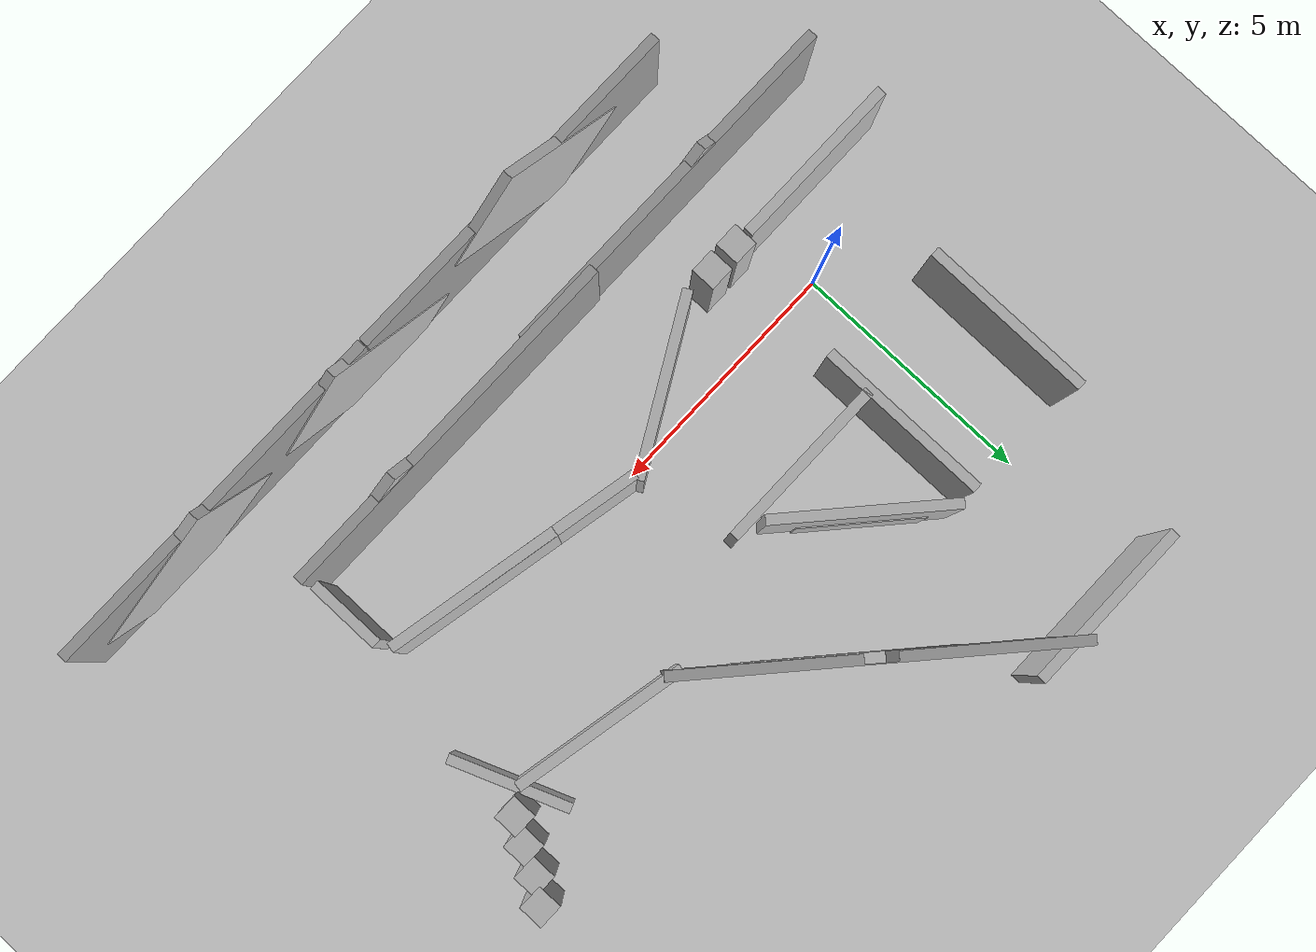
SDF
<sdf version="1.6">
 <world name="default">
  <model name="ground_plane">
   <static>1</static>
   <link name="link">
    <collision name="collision">
     <geometry><plane><normal>0 0 1</normal><size>100 100</size></plane></geometry>
     <surface><friction><ode><mu>100</mu><mu2>50</mu2></ode></friction></surface>
    </collision>
    <visual name="visual">
     <cast_shadows>0</cast_shadows>
     <geometry><plane><normal>0 0 1</normal><size>100 100</size></plane></geometry>
     <material>
      <script><uri>file://media/materials/scripts/gazebo.material</uri><name>Gazebo/Grey</name></script>
     </material>
    </visual>
   </link>
  </model>
  <model name="mywall_net3_clone">
   <static>1</static>
   <link name="link">
    <pose>0 0 1.4 0 -0 0</pose>
    <collision name="collision"><geometry><box><size>3.5 0.2 2.4</size></box></geometry></collision>
    <visual name="visual">
     <cast_shadows>0</cast_shadows>
     <geometry><box><size>3.5 0.2 2.4</size></box></geometry>
     <material>
      <script>
       <uri>model://mywall_net3/materials/scripts</uri>
       <uri>model://mywall_net3/materials/textures</uri>
       <name>vrc/mywall_net3</name>
      </script>
     </material>
    </visual>
   </link>
   <pose>-1.37353 3.08384 0 0 -0 1.57</pose>
  </model>
  <model name="mywall_net3_clone_0">
   <static>1</static>
   <link name="link">
    <pose>0 0 1.4 0 -0 0</pose>
    <collision name="collision"><geometry><box><size>3.5 0.2 2.4</size></box></geometry></collision>
    <visual name="visual">
     <cast_shadows>0</cast_shadows>
     <geometry><box><size>3.5 0.2 2.4</size></box></geometry>
     <material>
      <script>
       <uri>model://mywall_net3/materials/scripts</uri>
       <uri>model://mywall_net3/materials/textures</uri>
       <name>vrc/mywall_net3</name>
      </script>
     </material>
    </visual>
   </link>
   <pose>1.22002 2.95583 0 0 -0 1.57</pose>
  </model>
  <model name="mywall_net9">
   <static>1</static>
   <link name="link">
    <pose>0 0 1.4 0 -0 0</pose>
    <collision name="collision"><geometry><box><size>3.5 0.2 2.4</size></box></geometry></collision>
    <visual name="visual">
     <cast_shadows>0</cast_shadows>
     <geometry><box><size>3.5 0.2 2.4</size></box></geometry>
     <material>
      <script>
       <uri>model://mywall_net9/materials/scripts</uri>
       <uri>model://mywall_net9/materials/textures</uri>
       <name>vrc/mywall_net9</name>
      </script>
     </material>
    </visual>
   </link>
   <pose>3 2.1723 0 0 -0 0</pose>
  </model>
  <model name="mywall_net8">
   <static>1</static>
   <link name="link">
    <pose>0 0 1.4 0 -0 0</pose>
    <collision name="collision"><geometry><box><size>3.5 0.2 2.4</size></box></geometry></collision>
    <visual name="visual">
     <cast_shadows>0</cast_shadows>
     <geometry><box><size>3.5 0.2 2.4</size></box></geometry>
     <material>
      <script>
       <uri>model://mywall_net8/materials/scripts</uri>
       <uri>model://mywall_net8/materials/textures</uri>
       <name>vrc/mywall_net8</name>
      </script>
     </material>
    </visual>
   </link>
   <pose>-1.13585 -1.30699 0 0 -0 0</pose>
  </model>
  <model name="mywall1_0">
   <static>1</static>
   <link name="link">
    <pose>0 0 1.4 0 -0 0</pose>
    <collision name="collision"><geometry><box><size>3.5 0.2 2.4</size></box></geometry></collision>
    <visual name="visual">
     <cast_shadows>0</cast_shadows>
     <geometry><box><size>3.5 0.2 2.4</size></box></geometry>
     <material>
      <script>
       <uri>model://mywall1/materials/scripts</uri>
       <uri>model://mywall1/materials/textures</uri>
       <name>vrc/mywall1</name>
      </script>
     </material>
    </visual>
   </link>
   <pose>1.18748 7.74669 0 0 -0 0</pose>
  </model>
  <model name="grey_wall_clone_clone_clone_clone">
   <static>1</static>
   <link name="link">
    <pose>0 0 1.4 0 -0 0</pose>
    <collision name="collision"><geometry><box><size>7.5 0.2 2.8</size></box></geometry></collision>
    <visual name="visual">
     <cast_shadows>0</cast_shadows>
     <geometry><box><size>7.5 0.2 2.8</size></box></geometry>
     <material>
      <script>
       <uri>model://grey_wall/materials/scripts</uri>
       <uri>model://grey_wall/materials/textures</uri>
       <name>vrc/grey_wall</name>
      </script>
     </material>
    </visual>
   </link>
   <pose>4.57876 5.44143 0 0 0 -0.735</pose>
  </model>
  <model name="mywall_net8_clone_clone_0">
   <static>1</static>
   <link name="link">
    <pose>0 0 1.4 0 -0 0</pose>
    <collision name="collision"><geometry><box><size>3.5 0.2 2.4</size></box></geometry></collision>
    <visual name="visual">
     <cast_shadows>0</cast_shadows>
     <geometry><box><size>3.5 0.2 2.4</size></box></geometry>
     <material>
      <script>
       <uri>model://mywall_net8/materials/scripts</uri>
       <uri>model://mywall_net8/materials/textures</uri>
       <name>vrc/mywall_net8</name>
      </script>
     </material>
    </visual>
   </link>
   <pose>3.62528 -0.556702 0 0 -0 0.5</pose>
  </model>
  <model name="mypillar_1_clone">
   <static>1</static>
   <link name="link">
    <pose>0 0 1.4 0 -0 0</pose>
    <collision name="collision"><geometry><box><size>0.5 0.5 2.4</size></box></geometry></collision>
    <visual name="visual">
     <cast_shadows>0</cast_shadows>
     <geometry><box><size>0.5 0.5 2.4</size></box></geometry>
     <material>
      <script>
       <uri>model://mypillar/materials/scripts</uri>
       <uri>model://mypillar/materials/textures</uri>
       <name>vrc/mypillar</name>
      </script>
     </material>
    </visual>
   </link>
   <pose>0.920022 -1.31799 0 0 -0 0</pose>
  </model>
  <model name="mypillar_1_clone_0">
   <static>1</static>
   <link name="link">
    <pose>0 0 1.4 0 -0 0</pose>
    <collision name="collision"><geometry><box><size>0.5 0.5 2.4</size></box></geometry></collision>
    <visual name="visual">
     <cast_shadows>0</cast_shadows>
     <geometry><box><size>0.5 0.5 2.4</size></box></geometry>
     <material>
      <script>
       <uri>model://mypillar/materials/scripts</uri>
       <uri>model://mypillar/materials/textures</uri>
       <name>vrc/mypillar</name>
      </script>
     </material>
    </visual>
   </link>
   <pose>1.54699 -1.31215 0 0 -0 0</pose>
  </model>
  <model name="mywall0_clone">
   <static>1</static>
   <link name="link">
    <pose>0 0 1.4 0 -0 0</pose>
    <collision name="collision"><geometry><box><size>3.5 0.2 2.4</size></box></geometry></collision>
    <visual name="visual">
     <cast_shadows>0</cast_shadows>
     <geometry><box><size>3.5 0.2 2.4</size></box></geometry>
     <material>
      <script>
       <uri>model://mywall0/materials/scripts</uri>
       <uri>model://mywall0/materials/textures</uri>
       <name>vrc/mywall0</name>
      </script>
     </material>
    </visual>
   </link>
   <pose>6.82844 -0.184627 0 0 0 -0.2</pose>
  </model>
  <model name="mywall0_clone_clone">
   <static>1</static>
   <link name="link">
    <pose>0 0 1.4 0 -0 0</pose>
    <collision name="collision"><geometry><box><size>3.5 0.2 2.4</size></box></geometry></collision>
    <visual name="visual">
     <cast_shadows>0</cast_shadows>
     <geometry><box><size>3.5 0.2 2.4</size></box></geometry>
     <material>
      <script>
       <uri>model://mywall0/materials/scripts</uri>
       <uri>model://mywall0/materials/textures</uri>
       <name>vrc/mywall0</name>
      </script>
     </material>
    </visual>
   </link>
   <pose>8.52847 -0.528615 0 0 0 -0.2</pose>
  </model>
  <model name="mywall_net2_1_clone">
   <static>1</static>
   <link name="link">
    <pose>0 0 1.4 0 -0 0</pose>
    <collision name="collision"><geometry><box><size>3.5 0.2 2.4</size></box></geometry></collision>
    <visual name="visual">
     <cast_shadows>0</cast_shadows>
     <geometry><box><size>3.5 0.2 2.4</size></box></geometry>
     <material>
      <script>
       <uri>model://mywall_net2/materials/scripts</uri>
       <uri>model://mywall_net2/materials/textures</uri>
       <name>vrc/mywall_net2</name>
      </script>
     </material>
    </visual>
   </link>
   <pose>8.7594 2.72284 0 0 0 -0.2</pose>
  </model>
  <model name="mypillar_1_clone_0_clone">
   <static>1</static>
   <link name="link">
    <pose>0 0 1.4 0 -0 0</pose>
    <collision name="collision"><geometry><box><size>0.5 0.5 2.4</size></box></geometry></collision>
    <visual name="visual">
     <cast_shadows>0</cast_shadows>
     <geometry><box><size>0.5 0.5 2.4</size></box></geometry>
     <material>
      <script>
       <uri>model://mypillar/materials/scripts</uri>
       <uri>model://mypillar/materials/textures</uri>
       <name>vrc/mypillar</name>
      </script>
     </material>
    </visual>
   </link>
   <pose>10.8687 2.68887 0 0 -0 0</pose>
  </model>
  <model name="mypillar_1_clone_0_clone_0">
   <static>1</static>
   <link name="link">
    <pose>0 0 1.4 0 -0 0</pose>
    <collision name="collision"><geometry><box><size>0.5 0.5 2.4</size></box></geometry></collision>
    <visual name="visual">
     <cast_shadows>0</cast_shadows>
     <geometry><box><size>0.5 0.5 2.4</size></box></geometry>
     <material>
      <script>
       <uri>model://mypillar/materials/scripts</uri>
       <uri>model://mypillar/materials/textures</uri>
       <name>vrc/mypillar</name>
      </script>
     </material>
    </visual>
   </link>
   <pose>11.1303 3.14665 0 0 -0 0</pose>
  </model>
  <model name="mypillar_1_clone_0_clone_1">
   <static>1</static>
   <link name="link">
    <pose>0 0 1.4 0 -0 0</pose>
    <collision name="collision"><geometry><box><size>0.5 0.5 2.4</size></box></geometry></collision>
    <visual name="visual">
     <cast_shadows>0</cast_shadows>
     <geometry><box><size>0.5 0.5 2.4</size></box></geometry>
     <material>
      <script>
       <uri>model://mypillar/materials/scripts</uri>
       <uri>model://mypillar/materials/textures</uri>
       <name>vrc/mypillar</name>
      </script>
     </material>
    </visual>
   </link>
   <pose>11.3906 3.64228 0 0 -0 0</pose>
  </model>
  <model name="mypillar_1_clone_0_clone_2">
   <static>1</static>
   <link name="link">
    <pose>0 0 1.4 0 -0 0</pose>
    <collision name="collision"><geometry><box><size>0.5 0.5 2.4</size></box></geometry></collision>
    <visual name="visual">
     <cast_shadows>0</cast_shadows>
     <geometry><box><size>0.5 0.5 2.4</size></box></geometry>
     <material>
      <script>
       <uri>model://mypillar/materials/scripts</uri>
       <uri>model://mypillar/materials/textures</uri>
       <name>vrc/mypillar</name>
      </script>
     </material>
    </visual>
   </link>
   <pose>11.6902 4.0623 0 0 -0 0</pose>
  </model>
  <model name="mywall_net11_0_clone_clone">
   <static>1</static>
   <link name="link">
    <pose>0 0 1.4 0 -0 0</pose>
    <collision name="collision"><geometry><box><size>1.5 0.2 2.4</size></box></geometry></collision>
    <visual name="visual">
     <cast_shadows>0</cast_shadows>
     <geometry><box><size>1.5 0.2 2.4</size></box></geometry>
     <material>
      <script>
       <uri>model://mywall_net11/materials/scripts</uri>
       <uri>model://mywall_net11/materials/textures</uri>
       <name>vrc/mywall_net11</name>
      </script>
     </material>
    </visual>
   </link>
   <pose>10.3494 -1.85373 2.8 3.14 0 1.57</pose>
  </model>
  <model name="grey_wall_2_clone">
   <static>1</static>
   <link name="link">
    <pose>0 0 1.4 0 -0 0</pose>
    <collision name="collision"><geometry><box><size>7.5 0.2 2.8</size></box></geometry></collision>
    <visual name="visual">
     <cast_shadows>0</cast_shadows>
     <geometry><box><size>7.5 0.2 2.8</size></box></geometry>
     <material>
      <script>
       <uri>model://grey_wall/materials/scripts</uri>
       <uri>model://grey_wall/materials/textures</uri>
       <name>vrc/grey_wall</name>
      </script>
     </material>
    </visual>
   </link>
   <pose>6.72766 -2.82714 0 0 -0 0</pose>
  </model>
  <model name="grey_wall_2_clone_0">
   <static>1</static>
   <link name="link">
    <pose>0 0 1.4 0 -0 0</pose>
    <collision name="collision"><geometry><box><size>7.5 0.2 2.8</size></box></geometry></collision>
    <visual name="visual">
     <cast_shadows>0</cast_shadows>
     <geometry><box><size>7.5 0.2 2.8</size></box></geometry>
     <material>
      <script>
       <uri>model://grey_wall/materials/scripts</uri>
       <uri>model://grey_wall/materials/textures</uri>
       <name>vrc/grey_wall</name>
      </script>
     </material>
    </visual>
   </link>
   <pose>0.993119 -2.88058 0 0 -0 0</pose>
  </model>
  <model name="grey_wall_2_clone_1">
   <static>1</static>
   <link name="link">
    <pose>0 0 1.4 0 -0 0</pose>
    <collision name="collision"><geometry><box><size>7.5 0.2 2.8</size></box></geometry></collision>
    <visual name="visual">
     <cast_shadows>0</cast_shadows>
     <geometry><box><size>7.5 0.2 2.8</size></box></geometry>
     <material>
      <script>
       <uri>model://grey_wall/materials/scripts</uri>
       <uri>model://grey_wall/materials/textures</uri>
       <name>vrc/grey_wall</name>
      </script>
     </material>
    </visual>
   </link>
   <pose>10.4704 -4.87772 0 0 -0 0</pose>
  </model>
  <model name="grey_wall_2_clone_2">
   <static>1</static>
   <link name="link">
    <pose>0 0 1.4 0 -0 0</pose>
    <collision name="collision"><geometry><box><size>7.5 0.2 2.8</size></box></geometry></collision>
    <visual name="visual">
     <cast_shadows>0</cast_shadows>
     <geometry><box><size>7.5 0.2 2.8</size></box></geometry>
     <material>
      <script>
       <uri>model://grey_wall/materials/scripts</uri>
       <uri>model://grey_wall/materials/textures</uri>
       <name>vrc/grey_wall</name>
      </script>
     </material>
    </visual>
   </link>
   <pose>2.94832 -4.87324 0 0 -0 0</pose>
  </model>
  <model name="mywall_net11">
   <static>1</static>
   <link name="link">
    <pose>0 0 1.4 0 -0 0</pose>
    <collision name="collision"><geometry><box><size>1.5 0.2 2.4</size></box></geometry></collision>
    <visual name="visual">
     <cast_shadows>0</cast_shadows>
     <geometry><box><size>1.5 0.2 2.4</size></box></geometry>
     <material>
      <script>
       <uri>model://mywall_net11/materials/scripts</uri>
       <uri>model://mywall_net11/materials/textures</uri>
       <name>vrc/mywall_net11</name>
      </script>
     </material>
    </visual>
   </link>
   <pose>4.268 -2.8534 0.8 0 1.57 0</pose>
  </model>
  <model name="mywall_net2">
   <static>1</static>
   <link name="link">
    <pose>0 0 1.4 0 -0 0</pose>
    <collision name="collision"><geometry><box><size>3.5 0.2 2.4</size></box></geometry></collision>
    <visual name="visual">
     <cast_shadows>0</cast_shadows>
     <geometry><box><size>3.5 0.2 2.4</size></box></geometry>
     <material>
      <script>
       <uri>model://mywall_net2/materials/scripts</uri>
       <uri>model://mywall_net2/materials/textures</uri>
       <name>vrc/mywall_net2</name>
      </script>
     </material>
    </visual>
   </link>
   <pose>-0.288156 -2.9 -3e-06 0 0.734999 0</pose>
  </model>
  <model name="mywall_net5_clone_0">
   <static>1</static>
   <link name="link">
    <pose>0 0 1.4 0 -0 0</pose>
    <collision name="collision"><geometry><box><size>3.5 0.2 2.4</size></box></geometry></collision>
    <visual name="visual">
     <cast_shadows>0</cast_shadows>
     <geometry><box><size>3.5 0.2 2.4</size></box></geometry>
     <material>
      <script>
       <uri>model://mywall_net5/materials/scripts</uri>
       <uri>model://mywall_net5/materials/textures</uri>
       <name>vrc/mywall_net5</name>
      </script>
     </material>
    </visual>
   </link>
   <pose>3.3952 -4.85 0.799997 0 -0.734999 0</pose>
  </model>
  <model name="mywall_net11_clone">
   <static>1</static>
   <link name="link">
    <pose>0 0 1.4 0 -0 0</pose>
    <collision name="collision"><geometry><box><size>1.5 0.2 2.4</size></box></geometry></collision>
    <visual name="visual">
     <cast_shadows>0</cast_shadows>
     <geometry><box><size>1.5 0.2 2.4</size></box></geometry>
     <material>
      <script>
       <uri>model://mywall_net11/materials/scripts</uri>
       <uri>model://mywall_net11/materials/textures</uri>
       <name>vrc/mywall_net11</name>
      </script>
     </material>
    </visual>
   </link>
   <pose>6.86741 -2.84387 0.799997 0 0.735 0</pose>
  </model>
  <model name="mywall_net8_clone_0">
   <static>1</static>
   <link name="link">
    <pose>0 0 1.4 0 -0 0</pose>
    <collision name="collision"><geometry><box><size>3.5 0.2 2.4</size></box></geometry></collision>
    <visual name="visual">
     <cast_shadows>0</cast_shadows>
     <geometry><box><size>3.5 0.2 2.4</size></box></geometry>
     <material>
      <script>
       <uri>model://mywall_net8/materials/scripts</uri>
       <uri>model://mywall_net8/materials/textures</uri>
       <name>vrc/mywall_net8</name>
      </script>
     </material>
    </visual>
   </link>
   <pose>7.92725 -4.85 -3e-06 0 -0.734999 0</pose>
  </model>
  <model name="mywall_net3">
   <static>1</static>
   <link name="link">
    <pose>0 0 1.4 0 -0 0</pose>
    <collision name="collision"><geometry><box><size>3.5 0.2 2.4</size></box></geometry></collision>
    <visual name="visual">
     <cast_shadows>0</cast_shadows>
     <geometry><box><size>3.5 0.2 2.4</size></box></geometry>
     <material>
      <script>
       <uri>model://mywall_net3/materials/scripts</uri>
       <uri>model://mywall_net3/materials/textures</uri>
       <name>vrc/mywall_net3</name>
      </script>
     </material>
    </visual>
   </link>
   <pose>10.8524 -4.85873 0 0 0.6 0</pose>
  </model>
  <model name="mywall_net4">
   <static>1</static>
   <link name="link">
    <pose>0 0 1.4 0 -0 0</pose>
    <collision name="collision"><geometry><box><size>3.5 0.2 2.4</size></box></geometry></collision>
    <visual name="visual">
     <cast_shadows>0</cast_shadows>
     <geometry><box><size>3.5 0.2 2.4</size></box></geometry>
     <material>
      <script>
       <uri>model://mywall_net4/materials/scripts</uri>
       <uri>model://mywall_net4/materials/textures</uri>
       <name>vrc/mywall_net4</name>
      </script>
     </material>
    </visual>
   </link>
   <pose>4.2 5.75888 -3e-06 -0 0.735001 -0.735001</pose>
  </model>
  <model name="mywall_net11_0_clone_clone_clone_clone">
   <static>1</static>
   <link name="link">
    <pose>0 0 1.4 0 -0 0</pose>
    <collision name="collision"><geometry><box><size>1.5 0.2 2.4</size></box></geometry></collision>
    <visual name="visual">
     <cast_shadows>0</cast_shadows>
     <geometry><box><size>1.5 0.2 2.4</size></box></geometry>
     <material>
      <script>
       <uri>model://mywall_net11/materials/scripts</uri>
       <uri>model://mywall_net11/materials/textures</uri>
       <name>vrc/mywall_net11</name>
      </script>
     </material>
    </visual>
   </link>
   <pose>11.1358 0.926275 0.5 -3.14108 1.57 -1.20001</pose>
  </model>
  <model name="mywall_net3_clone_0_clone">
   <static>1</static>
   <link name="link">
    <pose>0 0 1.4 0 -0 0</pose>
    <collision name="collision"><geometry><box><size>3.5 0.2 2.4</size></box></geometry></collision>
    <visual name="visual">
     <cast_shadows>0</cast_shadows>
     <geometry><box><size>3.5 0.2 2.4</size></box></geometry>
     <material>
      <script>
       <uri>model://mywall_net3/materials/scripts</uri>
       <uri>model://mywall_net3/materials/textures</uri>
       <name>vrc/mywall_net3</name>
      </script>
     </material>
    </visual>
   </link>
   <pose>2.86256 3.54459 0 0 0 -0.735</pose>
  </model>
  <model name="mywall_net11_0_clone_clone_clone_clone_clone_clone">
   <static>1</static>
   <link name="link">
    <pose>0 0 1.4 0 -0 0</pose>
    <collision name="collision"><geometry><box><size>1.5 0.2 2.4</size></box></geometry></collision>
    <visual name="visual">
     <cast_shadows>0</cast_shadows>
     <geometry><box><size>1.5 0.2 2.4</size></box></geometry>
     <material>
      <script>
       <uri>model://mywall_net11/materials/scripts</uri>
       <uri>model://mywall_net11/materials/textures</uri>
       <name>vrc/mywall_net11</name>
      </script>
     </material>
    </visual>
   </link>
   <pose>3.84822 2.68602 0.5 3.14101 1.57 -0.735021</pose>
  </model>
 </world>
</sdf>
